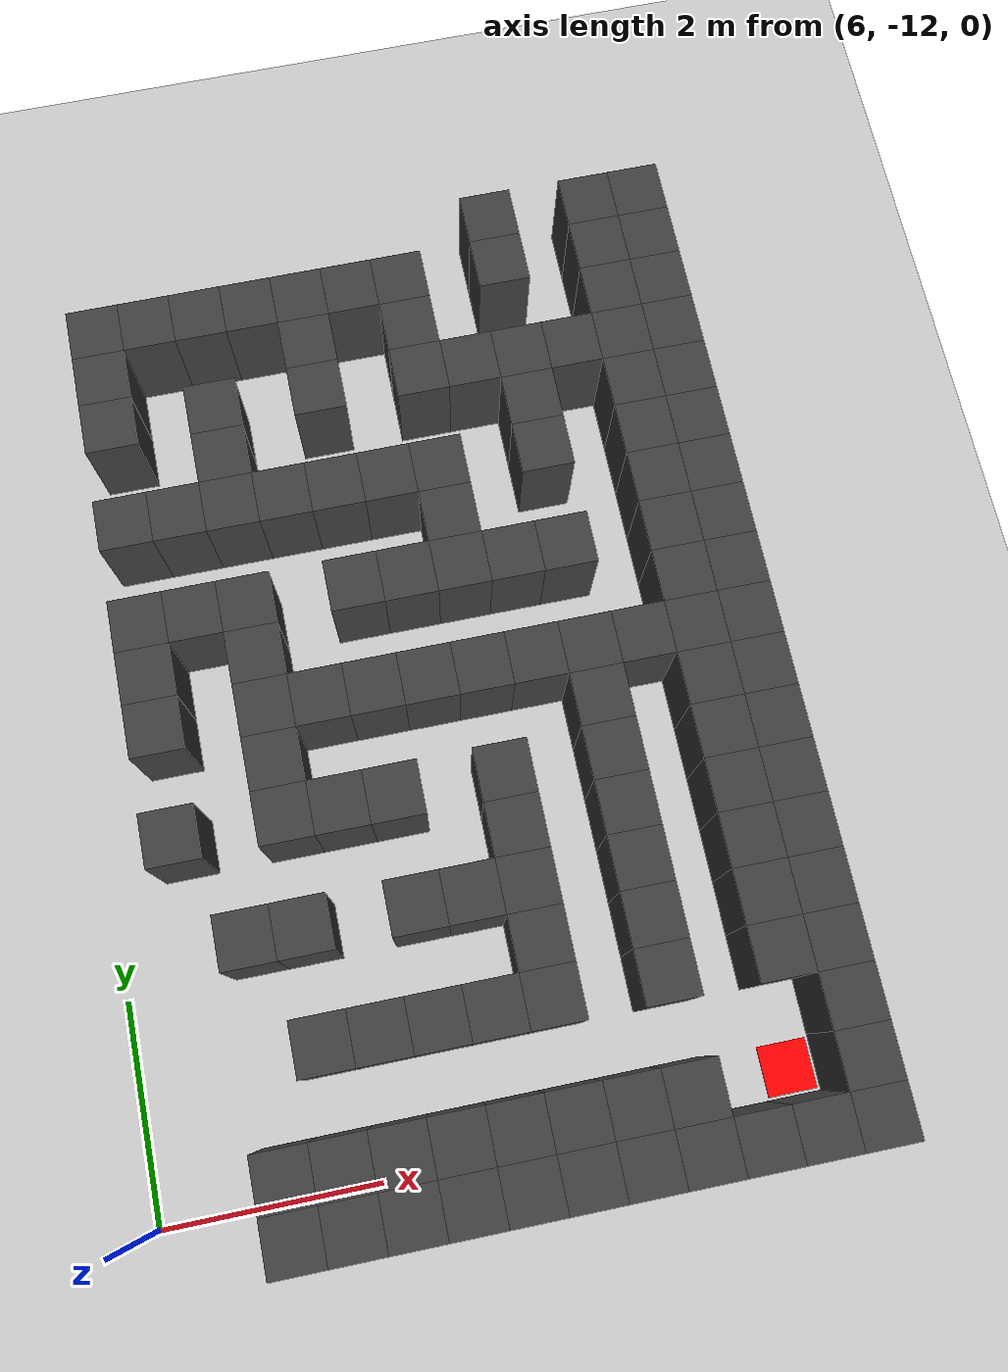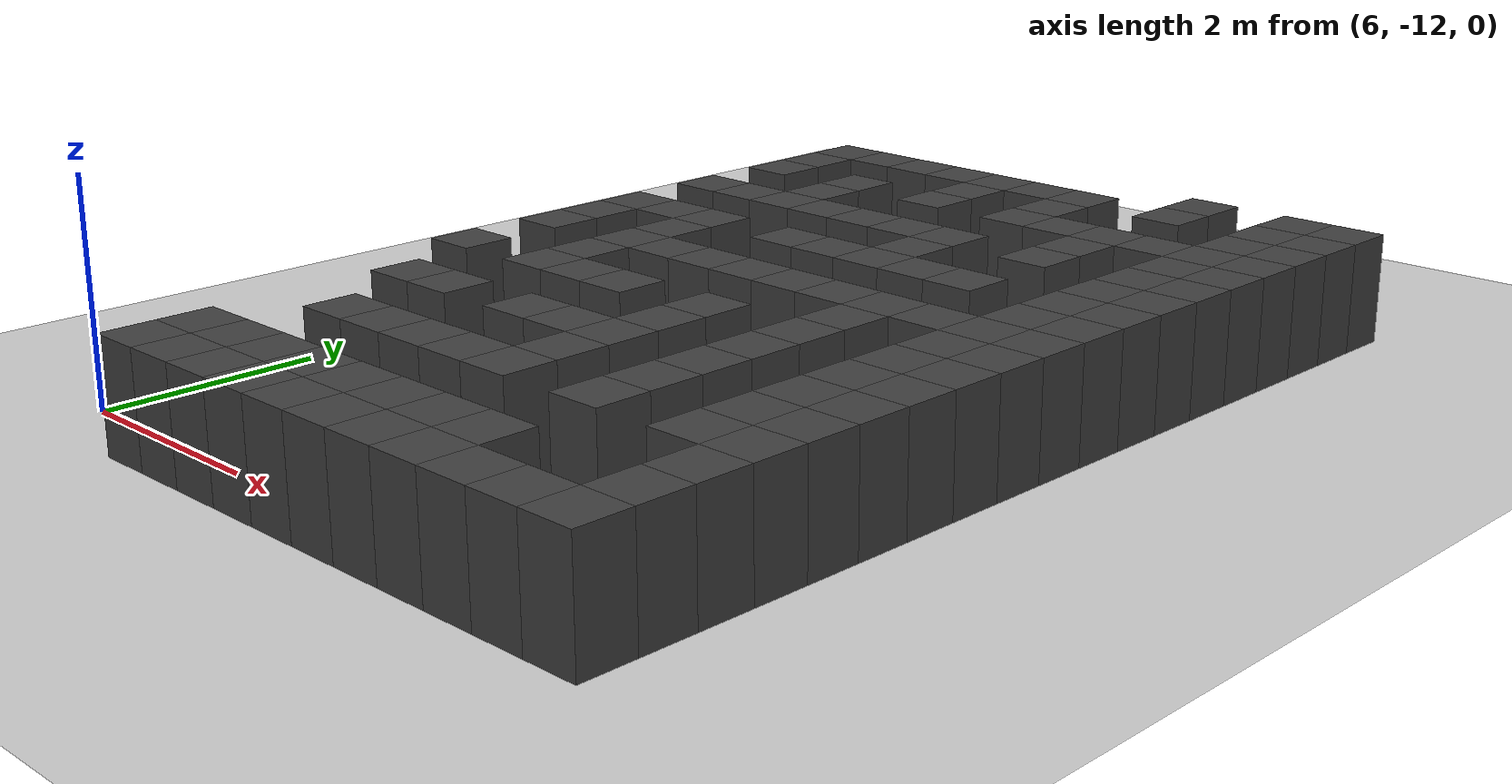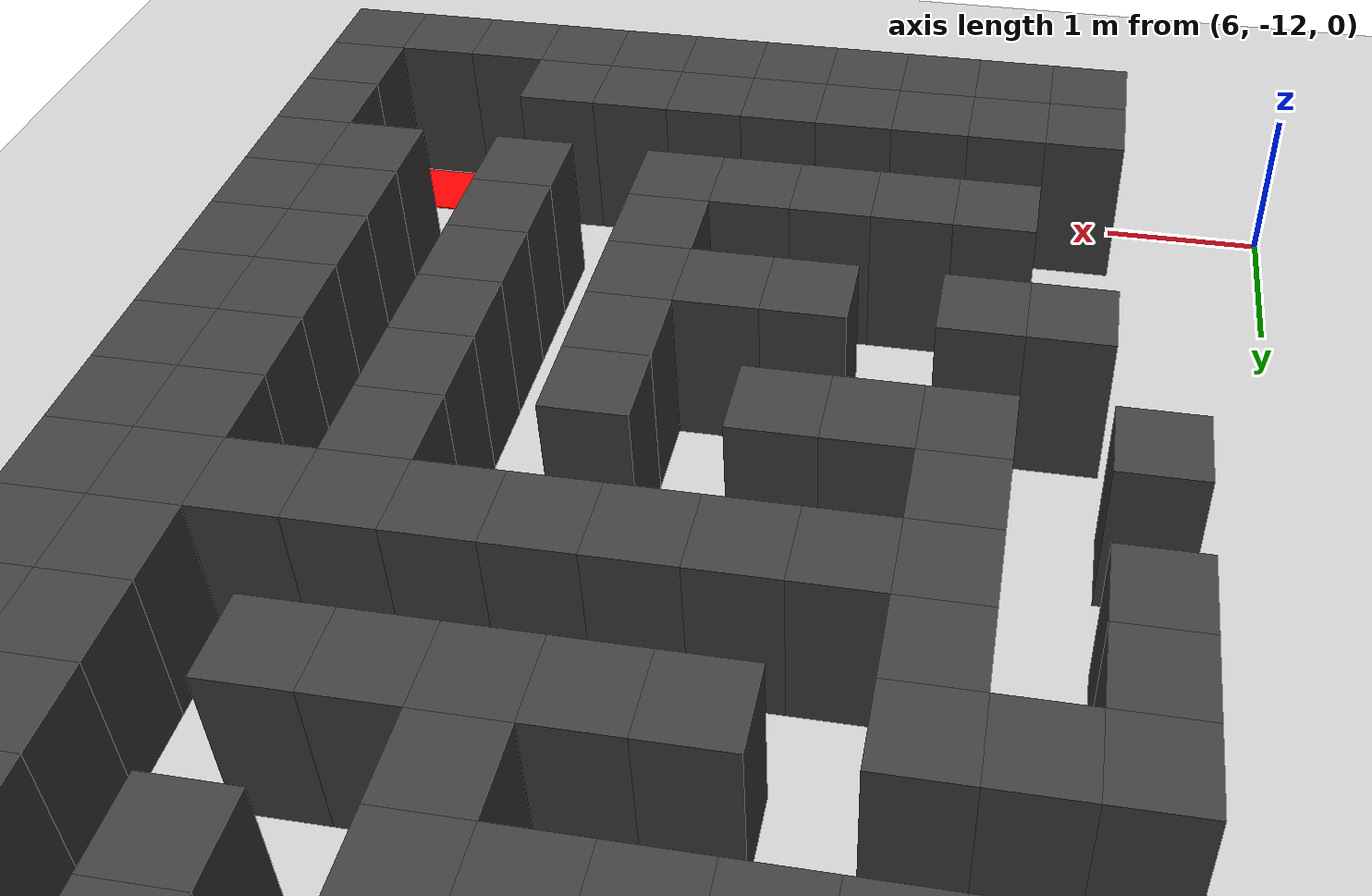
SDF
<sdf version="1.7">
 <world name="map_17663">
  <model name="ground_plane">
   <static>true</static>
   <link name="link">
    <collision name="collision">
     <geometry><plane><normal>0 0 1</normal><size>200 200</size></plane></geometry>
    </collision>
    <visual name="visual">
     <geometry><plane><normal>0 0 1</normal><size>200 200</size></plane></geometry>
     <material><ambient>0.8 0.8 0.8 1</ambient><diffuse>0.8 0.8 0.8 1</diffuse></material>
    </visual>
   </link>
  </model>
  <model name="maze_environment">
   <static>true</static>
   <link name="wall_786">
    <pose>10.750 -3.250 0.500 0 0 0</pose>
    <collision name="col"><geometry><box><size>0.5 0.5 1.0</size></box></geometry></collision>
    <visual name="vis">
     <geometry><box><size>0.5 0.5 1.0</size></box></geometry>
     <material><ambient>0.15 0.15 0.15 1</ambient><diffuse>0.25 0.25 0.25 1</diffuse></material>
    </visual>
   </link>
   <link name="wall_787">
    <pose>11.750 -3.250 0.500 0 0 0</pose>
    <collision name="col"><geometry><box><size>0.5 0.5 1.0</size></box></geometry></collision>
    <visual name="vis">
     <geometry><box><size>0.5 0.5 1.0</size></box></geometry>
     <material><ambient>0.15 0.15 0.15 1</ambient><diffuse>0.25 0.25 0.25 1</diffuse></material>
    </visual>
   </link>
   <link name="wall_788">
    <pose>12.250 -3.250 0.500 0 0 0</pose>
    <collision name="col"><geometry><box><size>0.5 0.5 1.0</size></box></geometry></collision>
    <visual name="vis">
     <geometry><box><size>0.5 0.5 1.0</size></box></geometry>
     <material><ambient>0.15 0.15 0.15 1</ambient><diffuse>0.25 0.25 0.25 1</diffuse></material>
    </visual>
   </link>
   <link name="wall_816">
    <pose>6.750 -3.750 0.500 0 0 0</pose>
    <collision name="col"><geometry><box><size>0.5 0.5 1.0</size></box></geometry></collision>
    <visual name="vis">
     <geometry><box><size>0.5 0.5 1.0</size></box></geometry>
     <material><ambient>0.15 0.15 0.15 1</ambient><diffuse>0.25 0.25 0.25 1</diffuse></material>
    </visual>
   </link>
   <link name="wall_817">
    <pose>7.250 -3.750 0.500 0 0 0</pose>
    <collision name="col"><geometry><box><size>0.5 0.5 1.0</size></box></geometry></collision>
    <visual name="vis">
     <geometry><box><size>0.5 0.5 1.0</size></box></geometry>
     <material><ambient>0.15 0.15 0.15 1</ambient><diffuse>0.25 0.25 0.25 1</diffuse></material>
    </visual>
   </link>
   <link name="wall_818">
    <pose>7.750 -3.750 0.500 0 0 0</pose>
    <collision name="col"><geometry><box><size>0.5 0.5 1.0</size></box></geometry></collision>
    <visual name="vis">
     <geometry><box><size>0.5 0.5 1.0</size></box></geometry>
     <material><ambient>0.15 0.15 0.15 1</ambient><diffuse>0.25 0.25 0.25 1</diffuse></material>
    </visual>
   </link>
   <link name="wall_819">
    <pose>8.250 -3.750 0.500 0 0 0</pose>
    <collision name="col"><geometry><box><size>0.5 0.5 1.0</size></box></geometry></collision>
    <visual name="vis">
     <geometry><box><size>0.5 0.5 1.0</size></box></geometry>
     <material><ambient>0.15 0.15 0.15 1</ambient><diffuse>0.25 0.25 0.25 1</diffuse></material>
    </visual>
   </link>
   <link name="wall_820">
    <pose>8.750 -3.750 0.500 0 0 0</pose>
    <collision name="col"><geometry><box><size>0.5 0.5 1.0</size></box></geometry></collision>
    <visual name="vis">
     <geometry><box><size>0.5 0.5 1.0</size></box></geometry>
     <material><ambient>0.15 0.15 0.15 1</ambient><diffuse>0.25 0.25 0.25 1</diffuse></material>
    </visual>
   </link>
   <link name="wall_821">
    <pose>9.250 -3.750 0.500 0 0 0</pose>
    <collision name="col"><geometry><box><size>0.5 0.5 1.0</size></box></geometry></collision>
    <visual name="vis">
     <geometry><box><size>0.5 0.5 1.0</size></box></geometry>
     <material><ambient>0.15 0.15 0.15 1</ambient><diffuse>0.25 0.25 0.25 1</diffuse></material>
    </visual>
   </link>
   <link name="wall_822">
    <pose>9.750 -3.750 0.500 0 0 0</pose>
    <collision name="col"><geometry><box><size>0.5 0.5 1.0</size></box></geometry></collision>
    <visual name="vis">
     <geometry><box><size>0.5 0.5 1.0</size></box></geometry>
     <material><ambient>0.15 0.15 0.15 1</ambient><diffuse>0.25 0.25 0.25 1</diffuse></material>
    </visual>
   </link>
   <link name="wall_823">
    <pose>10.750 -3.750 0.500 0 0 0</pose>
    <collision name="col"><geometry><box><size>0.5 0.5 1.0</size></box></geometry></collision>
    <visual name="vis">
     <geometry><box><size>0.5 0.5 1.0</size></box></geometry>
     <material><ambient>0.15 0.15 0.15 1</ambient><diffuse>0.25 0.25 0.25 1</diffuse></material>
    </visual>
   </link>
   <link name="wall_824">
    <pose>11.750 -3.750 0.500 0 0 0</pose>
    <collision name="col"><geometry><box><size>0.5 0.5 1.0</size></box></geometry></collision>
    <visual name="vis">
     <geometry><box><size>0.5 0.5 1.0</size></box></geometry>
     <material><ambient>0.15 0.15 0.15 1</ambient><diffuse>0.25 0.25 0.25 1</diffuse></material>
    </visual>
   </link>
   <link name="wall_825">
    <pose>12.250 -3.750 0.500 0 0 0</pose>
    <collision name="col"><geometry><box><size>0.5 0.5 1.0</size></box></geometry></collision>
    <visual name="vis">
     <geometry><box><size>0.5 0.5 1.0</size></box></geometry>
     <material><ambient>0.15 0.15 0.15 1</ambient><diffuse>0.25 0.25 0.25 1</diffuse></material>
    </visual>
   </link>
   <link name="wall_834">
    <pose>6.750 -4.250 0.500 0 0 0</pose>
    <collision name="col"><geometry><box><size>0.5 0.5 1.0</size></box></geometry></collision>
    <visual name="vis">
     <geometry><box><size>0.5 0.5 1.0</size></box></geometry>
     <material><ambient>0.15 0.15 0.15 1</ambient><diffuse>0.25 0.25 0.25 1</diffuse></material>
    </visual>
   </link>
   <link name="wall_835">
    <pose>8.750 -4.250 0.500 0 0 0</pose>
    <collision name="col"><geometry><box><size>0.5 0.5 1.0</size></box></geometry></collision>
    <visual name="vis">
     <geometry><box><size>0.5 0.5 1.0</size></box></geometry>
     <material><ambient>0.15 0.15 0.15 1</ambient><diffuse>0.25 0.25 0.25 1</diffuse></material>
    </visual>
   </link>
   <link name="wall_836">
    <pose>9.750 -4.250 0.500 0 0 0</pose>
    <collision name="col"><geometry><box><size>0.5 0.5 1.0</size></box></geometry></collision>
    <visual name="vis">
     <geometry><box><size>0.5 0.5 1.0</size></box></geometry>
     <material><ambient>0.15 0.15 0.15 1</ambient><diffuse>0.25 0.25 0.25 1</diffuse></material>
    </visual>
   </link>
   <link name="wall_837">
    <pose>11.750 -4.250 0.500 0 0 0</pose>
    <collision name="col"><geometry><box><size>0.5 0.5 1.0</size></box></geometry></collision>
    <visual name="vis">
     <geometry><box><size>0.5 0.5 1.0</size></box></geometry>
     <material><ambient>0.15 0.15 0.15 1</ambient><diffuse>0.25 0.25 0.25 1</diffuse></material>
    </visual>
   </link>
   <link name="wall_838">
    <pose>12.250 -4.250 0.500 0 0 0</pose>
    <collision name="col"><geometry><box><size>0.5 0.5 1.0</size></box></geometry></collision>
    <visual name="vis">
     <geometry><box><size>0.5 0.5 1.0</size></box></geometry>
     <material><ambient>0.15 0.15 0.15 1</ambient><diffuse>0.25 0.25 0.25 1</diffuse></material>
    </visual>
   </link>
   <link name="wall_864">
    <pose>6.750 -4.750 0.500 0 0 0</pose>
    <collision name="col"><geometry><box><size>0.5 0.5 1.0</size></box></geometry></collision>
    <visual name="vis">
     <geometry><box><size>0.5 0.5 1.0</size></box></geometry>
     <material><ambient>0.15 0.15 0.15 1</ambient><diffuse>0.25 0.25 0.25 1</diffuse></material>
    </visual>
   </link>
   <link name="wall_865">
    <pose>7.750 -4.750 0.500 0 0 0</pose>
    <collision name="col"><geometry><box><size>0.5 0.5 1.0</size></box></geometry></collision>
    <visual name="vis">
     <geometry><box><size>0.5 0.5 1.0</size></box></geometry>
     <material><ambient>0.15 0.15 0.15 1</ambient><diffuse>0.25 0.25 0.25 1</diffuse></material>
    </visual>
   </link>
   <link name="wall_866">
    <pose>8.750 -4.750 0.500 0 0 0</pose>
    <collision name="col"><geometry><box><size>0.5 0.5 1.0</size></box></geometry></collision>
    <visual name="vis">
     <geometry><box><size>0.5 0.5 1.0</size></box></geometry>
     <material><ambient>0.15 0.15 0.15 1</ambient><diffuse>0.25 0.25 0.25 1</diffuse></material>
    </visual>
   </link>
   <link name="wall_867">
    <pose>9.750 -4.750 0.500 0 0 0</pose>
    <collision name="col"><geometry><box><size>0.5 0.5 1.0</size></box></geometry></collision>
    <visual name="vis">
     <geometry><box><size>0.5 0.5 1.0</size></box></geometry>
     <material><ambient>0.15 0.15 0.15 1</ambient><diffuse>0.25 0.25 0.25 1</diffuse></material>
    </visual>
   </link>
   <link name="wall_868">
    <pose>10.250 -4.750 0.500 0 0 0</pose>
    <collision name="col"><geometry><box><size>0.5 0.5 1.0</size></box></geometry></collision>
    <visual name="vis">
     <geometry><box><size>0.5 0.5 1.0</size></box></geometry>
     <material><ambient>0.15 0.15 0.15 1</ambient><diffuse>0.25 0.25 0.25 1</diffuse></material>
    </visual>
   </link>
   <link name="wall_869">
    <pose>10.750 -4.750 0.500 0 0 0</pose>
    <collision name="col"><geometry><box><size>0.5 0.5 1.0</size></box></geometry></collision>
    <visual name="vis">
     <geometry><box><size>0.5 0.5 1.0</size></box></geometry>
     <material><ambient>0.15 0.15 0.15 1</ambient><diffuse>0.25 0.25 0.25 1</diffuse></material>
    </visual>
   </link>
   <link name="wall_870">
    <pose>11.250 -4.750 0.500 0 0 0</pose>
    <collision name="col"><geometry><box><size>0.5 0.5 1.0</size></box></geometry></collision>
    <visual name="vis">
     <geometry><box><size>0.5 0.5 1.0</size></box></geometry>
     <material><ambient>0.15 0.15 0.15 1</ambient><diffuse>0.25 0.25 0.25 1</diffuse></material>
    </visual>
   </link>
   <link name="wall_871">
    <pose>11.750 -4.750 0.500 0 0 0</pose>
    <collision name="col"><geometry><box><size>0.5 0.5 1.0</size></box></geometry></collision>
    <visual name="vis">
     <geometry><box><size>0.5 0.5 1.0</size></box></geometry>
     <material><ambient>0.15 0.15 0.15 1</ambient><diffuse>0.25 0.25 0.25 1</diffuse></material>
    </visual>
   </link>
   <link name="wall_872">
    <pose>12.250 -4.750 0.500 0 0 0</pose>
    <collision name="col"><geometry><box><size>0.5 0.5 1.0</size></box></geometry></collision>
    <visual name="vis">
     <geometry><box><size>0.5 0.5 1.0</size></box></geometry>
     <material><ambient>0.15 0.15 0.15 1</ambient><diffuse>0.25 0.25 0.25 1</diffuse></material>
    </visual>
   </link>
   <link name="wall_886">
    <pose>7.750 -5.250 0.500 0 0 0</pose>
    <collision name="col"><geometry><box><size>0.5 0.5 1.0</size></box></geometry></collision>
    <visual name="vis">
     <geometry><box><size>0.5 0.5 1.0</size></box></geometry>
     <material><ambient>0.15 0.15 0.15 1</ambient><diffuse>0.25 0.25 0.25 1</diffuse></material>
    </visual>
   </link>
   <link name="wall_887">
    <pose>10.750 -5.250 0.500 0 0 0</pose>
    <collision name="col"><geometry><box><size>0.5 0.5 1.0</size></box></geometry></collision>
    <visual name="vis">
     <geometry><box><size>0.5 0.5 1.0</size></box></geometry>
     <material><ambient>0.15 0.15 0.15 1</ambient><diffuse>0.25 0.25 0.25 1</diffuse></material>
    </visual>
   </link>
   <link name="wall_888">
    <pose>11.750 -5.250 0.500 0 0 0</pose>
    <collision name="col"><geometry><box><size>0.5 0.5 1.0</size></box></geometry></collision>
    <visual name="vis">
     <geometry><box><size>0.5 0.5 1.0</size></box></geometry>
     <material><ambient>0.15 0.15 0.15 1</ambient><diffuse>0.25 0.25 0.25 1</diffuse></material>
    </visual>
   </link>
   <link name="wall_889">
    <pose>12.250 -5.250 0.500 0 0 0</pose>
    <collision name="col"><geometry><box><size>0.5 0.5 1.0</size></box></geometry></collision>
    <visual name="vis">
     <geometry><box><size>0.5 0.5 1.0</size></box></geometry>
     <material><ambient>0.15 0.15 0.15 1</ambient><diffuse>0.25 0.25 0.25 1</diffuse></material>
    </visual>
   </link>
   <link name="wall_910">
    <pose>6.750 -5.750 0.500 0 0 0</pose>
    <collision name="col"><geometry><box><size>0.5 0.5 1.0</size></box></geometry></collision>
    <visual name="vis">
     <geometry><box><size>0.5 0.5 1.0</size></box></geometry>
     <material><ambient>0.15 0.15 0.15 1</ambient><diffuse>0.25 0.25 0.25 1</diffuse></material>
    </visual>
   </link>
   <link name="wall_911">
    <pose>7.250 -5.750 0.500 0 0 0</pose>
    <collision name="col"><geometry><box><size>0.5 0.5 1.0</size></box></geometry></collision>
    <visual name="vis">
     <geometry><box><size>0.5 0.5 1.0</size></box></geometry>
     <material><ambient>0.15 0.15 0.15 1</ambient><diffuse>0.25 0.25 0.25 1</diffuse></material>
    </visual>
   </link>
   <link name="wall_912">
    <pose>7.750 -5.750 0.500 0 0 0</pose>
    <collision name="col"><geometry><box><size>0.5 0.5 1.0</size></box></geometry></collision>
    <visual name="vis">
     <geometry><box><size>0.5 0.5 1.0</size></box></geometry>
     <material><ambient>0.15 0.15 0.15 1</ambient><diffuse>0.25 0.25 0.25 1</diffuse></material>
    </visual>
   </link>
   <link name="wall_913">
    <pose>8.250 -5.750 0.500 0 0 0</pose>
    <collision name="col"><geometry><box><size>0.5 0.5 1.0</size></box></geometry></collision>
    <visual name="vis">
     <geometry><box><size>0.5 0.5 1.0</size></box></geometry>
     <material><ambient>0.15 0.15 0.15 1</ambient><diffuse>0.25 0.25 0.25 1</diffuse></material>
    </visual>
   </link>
   <link name="wall_914">
    <pose>8.750 -5.750 0.500 0 0 0</pose>
    <collision name="col"><geometry><box><size>0.5 0.5 1.0</size></box></geometry></collision>
    <visual name="vis">
     <geometry><box><size>0.5 0.5 1.0</size></box></geometry>
     <material><ambient>0.15 0.15 0.15 1</ambient><diffuse>0.25 0.25 0.25 1</diffuse></material>
    </visual>
   </link>
   <link name="wall_915">
    <pose>9.250 -5.750 0.500 0 0 0</pose>
    <collision name="col"><geometry><box><size>0.5 0.5 1.0</size></box></geometry></collision>
    <visual name="vis">
     <geometry><box><size>0.5 0.5 1.0</size></box></geometry>
     <material><ambient>0.15 0.15 0.15 1</ambient><diffuse>0.25 0.25 0.25 1</diffuse></material>
    </visual>
   </link>
   <link name="wall_916">
    <pose>9.750 -5.750 0.500 0 0 0</pose>
    <collision name="col"><geometry><box><size>0.5 0.5 1.0</size></box></geometry></collision>
    <visual name="vis">
     <geometry><box><size>0.5 0.5 1.0</size></box></geometry>
     <material><ambient>0.15 0.15 0.15 1</ambient><diffuse>0.25 0.25 0.25 1</diffuse></material>
    </visual>
   </link>
   <link name="wall_917">
    <pose>10.750 -5.750 0.500 0 0 0</pose>
    <collision name="col"><geometry><box><size>0.5 0.5 1.0</size></box></geometry></collision>
    <visual name="vis">
     <geometry><box><size>0.5 0.5 1.0</size></box></geometry>
     <material><ambient>0.15 0.15 0.15 1</ambient><diffuse>0.25 0.25 0.25 1</diffuse></material>
    </visual>
   </link>
   <link name="wall_918">
    <pose>11.750 -5.750 0.500 0 0 0</pose>
    <collision name="col"><geometry><box><size>0.5 0.5 1.0</size></box></geometry></collision>
    <visual name="vis">
     <geometry><box><size>0.5 0.5 1.0</size></box></geometry>
     <material><ambient>0.15 0.15 0.15 1</ambient><diffuse>0.25 0.25 0.25 1</diffuse></material>
    </visual>
   </link>
   <link name="wall_919">
    <pose>12.250 -5.750 0.500 0 0 0</pose>
    <collision name="col"><geometry><box><size>0.5 0.5 1.0</size></box></geometry></collision>
    <visual name="vis">
     <geometry><box><size>0.5 0.5 1.0</size></box></geometry>
     <material><ambient>0.15 0.15 0.15 1</ambient><diffuse>0.25 0.25 0.25 1</diffuse></material>
    </visual>
   </link>
   <link name="wall_931">
    <pose>9.750 -6.250 0.500 0 0 0</pose>
    <collision name="col"><geometry><box><size>0.5 0.5 1.0</size></box></geometry></collision>
    <visual name="vis">
     <geometry><box><size>0.5 0.5 1.0</size></box></geometry>
     <material><ambient>0.15 0.15 0.15 1</ambient><diffuse>0.25 0.25 0.25 1</diffuse></material>
    </visual>
   </link>
   <link name="wall_932">
    <pose>11.750 -6.250 0.500 0 0 0</pose>
    <collision name="col"><geometry><box><size>0.5 0.5 1.0</size></box></geometry></collision>
    <visual name="vis">
     <geometry><box><size>0.5 0.5 1.0</size></box></geometry>
     <material><ambient>0.15 0.15 0.15 1</ambient><diffuse>0.25 0.25 0.25 1</diffuse></material>
    </visual>
   </link>
   <link name="wall_933">
    <pose>12.250 -6.250 0.500 0 0 0</pose>
    <collision name="col"><geometry><box><size>0.5 0.5 1.0</size></box></geometry></collision>
    <visual name="vis">
     <geometry><box><size>0.5 0.5 1.0</size></box></geometry>
     <material><ambient>0.15 0.15 0.15 1</ambient><diffuse>0.25 0.25 0.25 1</diffuse></material>
    </visual>
   </link>
   <link name="wall_964">
    <pose>6.750 -6.750 0.500 0 0 0</pose>
    <collision name="col"><geometry><box><size>0.5 0.5 1.0</size></box></geometry></collision>
    <visual name="vis">
     <geometry><box><size>0.5 0.5 1.0</size></box></geometry>
     <material><ambient>0.15 0.15 0.15 1</ambient><diffuse>0.25 0.25 0.25 1</diffuse></material>
    </visual>
   </link>
   <link name="wall_965">
    <pose>7.250 -6.750 0.500 0 0 0</pose>
    <collision name="col"><geometry><box><size>0.5 0.5 1.0</size></box></geometry></collision>
    <visual name="vis">
     <geometry><box><size>0.5 0.5 1.0</size></box></geometry>
     <material><ambient>0.15 0.15 0.15 1</ambient><diffuse>0.25 0.25 0.25 1</diffuse></material>
    </visual>
   </link>
   <link name="wall_966">
    <pose>7.750 -6.750 0.500 0 0 0</pose>
    <collision name="col"><geometry><box><size>0.5 0.5 1.0</size></box></geometry></collision>
    <visual name="vis">
     <geometry><box><size>0.5 0.5 1.0</size></box></geometry>
     <material><ambient>0.15 0.15 0.15 1</ambient><diffuse>0.25 0.25 0.25 1</diffuse></material>
    </visual>
   </link>
   <link name="wall_967">
    <pose>8.750 -6.750 0.500 0 0 0</pose>
    <collision name="col"><geometry><box><size>0.5 0.5 1.0</size></box></geometry></collision>
    <visual name="vis">
     <geometry><box><size>0.5 0.5 1.0</size></box></geometry>
     <material><ambient>0.15 0.15 0.15 1</ambient><diffuse>0.25 0.25 0.25 1</diffuse></material>
    </visual>
   </link>
   <link name="wall_968">
    <pose>9.250 -6.750 0.500 0 0 0</pose>
    <collision name="col"><geometry><box><size>0.5 0.5 1.0</size></box></geometry></collision>
    <visual name="vis">
     <geometry><box><size>0.5 0.5 1.0</size></box></geometry>
     <material><ambient>0.15 0.15 0.15 1</ambient><diffuse>0.25 0.25 0.25 1</diffuse></material>
    </visual>
   </link>
   <link name="wall_969">
    <pose>9.750 -6.750 0.500 0 0 0</pose>
    <collision name="col"><geometry><box><size>0.5 0.5 1.0</size></box></geometry></collision>
    <visual name="vis">
     <geometry><box><size>0.5 0.5 1.0</size></box></geometry>
     <material><ambient>0.15 0.15 0.15 1</ambient><diffuse>0.25 0.25 0.25 1</diffuse></material>
    </visual>
   </link>
   <link name="wall_970">
    <pose>10.250 -6.750 0.500 0 0 0</pose>
    <collision name="col"><geometry><box><size>0.5 0.5 1.0</size></box></geometry></collision>
    <visual name="vis">
     <geometry><box><size>0.5 0.5 1.0</size></box></geometry>
     <material><ambient>0.15 0.15 0.15 1</ambient><diffuse>0.25 0.25 0.25 1</diffuse></material>
    </visual>
   </link>
   <link name="wall_971">
    <pose>10.750 -6.750 0.500 0 0 0</pose>
    <collision name="col"><geometry><box><size>0.5 0.5 1.0</size></box></geometry></collision>
    <visual name="vis">
     <geometry><box><size>0.5 0.5 1.0</size></box></geometry>
     <material><ambient>0.15 0.15 0.15 1</ambient><diffuse>0.25 0.25 0.25 1</diffuse></material>
    </visual>
   </link>
   <link name="wall_972">
    <pose>11.750 -6.750 0.500 0 0 0</pose>
    <collision name="col"><geometry><box><size>0.5 0.5 1.0</size></box></geometry></collision>
    <visual name="vis">
     <geometry><box><size>0.5 0.5 1.0</size></box></geometry>
     <material><ambient>0.15 0.15 0.15 1</ambient><diffuse>0.25 0.25 0.25 1</diffuse></material>
    </visual>
   </link>
   <link name="wall_973">
    <pose>12.250 -6.750 0.500 0 0 0</pose>
    <collision name="col"><geometry><box><size>0.5 0.5 1.0</size></box></geometry></collision>
    <visual name="vis">
     <geometry><box><size>0.5 0.5 1.0</size></box></geometry>
     <material><ambient>0.15 0.15 0.15 1</ambient><diffuse>0.25 0.25 0.25 1</diffuse></material>
    </visual>
   </link>
   <link name="wall_983">
    <pose>6.750 -7.250 0.500 0 0 0</pose>
    <collision name="col"><geometry><box><size>0.5 0.5 1.0</size></box></geometry></collision>
    <visual name="vis">
     <geometry><box><size>0.5 0.5 1.0</size></box></geometry>
     <material><ambient>0.15 0.15 0.15 1</ambient><diffuse>0.25 0.25 0.25 1</diffuse></material>
    </visual>
   </link>
   <link name="wall_984">
    <pose>7.750 -7.250 0.500 0 0 0</pose>
    <collision name="col"><geometry><box><size>0.5 0.5 1.0</size></box></geometry></collision>
    <visual name="vis">
     <geometry><box><size>0.5 0.5 1.0</size></box></geometry>
     <material><ambient>0.15 0.15 0.15 1</ambient><diffuse>0.25 0.25 0.25 1</diffuse></material>
    </visual>
   </link>
   <link name="wall_985">
    <pose>11.750 -7.250 0.500 0 0 0</pose>
    <collision name="col"><geometry><box><size>0.5 0.5 1.0</size></box></geometry></collision>
    <visual name="vis">
     <geometry><box><size>0.5 0.5 1.0</size></box></geometry>
     <material><ambient>0.15 0.15 0.15 1</ambient><diffuse>0.25 0.25 0.25 1</diffuse></material>
    </visual>
   </link>
   <link name="wall_986">
    <pose>12.250 -7.250 0.500 0 0 0</pose>
    <collision name="col"><geometry><box><size>0.5 0.5 1.0</size></box></geometry></collision>
    <visual name="vis">
     <geometry><box><size>0.5 0.5 1.0</size></box></geometry>
     <material><ambient>0.15 0.15 0.15 1</ambient><diffuse>0.25 0.25 0.25 1</diffuse></material>
    </visual>
   </link>
   <link name="wall_1009">
    <pose>6.750 -7.750 0.500 0 0 0</pose>
    <collision name="col"><geometry><box><size>0.5 0.5 1.0</size></box></geometry></collision>
    <visual name="vis">
     <geometry><box><size>0.5 0.5 1.0</size></box></geometry>
     <material><ambient>0.15 0.15 0.15 1</ambient><diffuse>0.25 0.25 0.25 1</diffuse></material>
    </visual>
   </link>
   <link name="wall_1010">
    <pose>7.750 -7.750 0.500 0 0 0</pose>
    <collision name="col"><geometry><box><size>0.5 0.5 1.0</size></box></geometry></collision>
    <visual name="vis">
     <geometry><box><size>0.5 0.5 1.0</size></box></geometry>
     <material><ambient>0.15 0.15 0.15 1</ambient><diffuse>0.25 0.25 0.25 1</diffuse></material>
    </visual>
   </link>
   <link name="wall_1011">
    <pose>8.250 -7.750 0.500 0 0 0</pose>
    <collision name="col"><geometry><box><size>0.5 0.5 1.0</size></box></geometry></collision>
    <visual name="vis">
     <geometry><box><size>0.5 0.5 1.0</size></box></geometry>
     <material><ambient>0.15 0.15 0.15 1</ambient><diffuse>0.25 0.25 0.25 1</diffuse></material>
    </visual>
   </link>
   <link name="wall_1012">
    <pose>8.750 -7.750 0.500 0 0 0</pose>
    <collision name="col"><geometry><box><size>0.5 0.5 1.0</size></box></geometry></collision>
    <visual name="vis">
     <geometry><box><size>0.5 0.5 1.0</size></box></geometry>
     <material><ambient>0.15 0.15 0.15 1</ambient><diffuse>0.25 0.25 0.25 1</diffuse></material>
    </visual>
   </link>
   <link name="wall_1013">
    <pose>9.250 -7.750 0.500 0 0 0</pose>
    <collision name="col"><geometry><box><size>0.5 0.5 1.0</size></box></geometry></collision>
    <visual name="vis">
     <geometry><box><size>0.5 0.5 1.0</size></box></geometry>
     <material><ambient>0.15 0.15 0.15 1</ambient><diffuse>0.25 0.25 0.25 1</diffuse></material>
    </visual>
   </link>
   <link name="wall_1014">
    <pose>9.750 -7.750 0.500 0 0 0</pose>
    <collision name="col"><geometry><box><size>0.5 0.5 1.0</size></box></geometry></collision>
    <visual name="vis">
     <geometry><box><size>0.5 0.5 1.0</size></box></geometry>
     <material><ambient>0.15 0.15 0.15 1</ambient><diffuse>0.25 0.25 0.25 1</diffuse></material>
    </visual>
   </link>
   <link name="wall_1015">
    <pose>10.250 -7.750 0.500 0 0 0</pose>
    <collision name="col"><geometry><box><size>0.5 0.5 1.0</size></box></geometry></collision>
    <visual name="vis">
     <geometry><box><size>0.5 0.5 1.0</size></box></geometry>
     <material><ambient>0.15 0.15 0.15 1</ambient><diffuse>0.25 0.25 0.25 1</diffuse></material>
    </visual>
   </link>
   <link name="wall_1016">
    <pose>10.750 -7.750 0.500 0 0 0</pose>
    <collision name="col"><geometry><box><size>0.5 0.5 1.0</size></box></geometry></collision>
    <visual name="vis">
     <geometry><box><size>0.5 0.5 1.0</size></box></geometry>
     <material><ambient>0.15 0.15 0.15 1</ambient><diffuse>0.25 0.25 0.25 1</diffuse></material>
    </visual>
   </link>
   <link name="wall_1017">
    <pose>11.250 -7.750 0.500 0 0 0</pose>
    <collision name="col"><geometry><box><size>0.5 0.5 1.0</size></box></geometry></collision>
    <visual name="vis">
     <geometry><box><size>0.5 0.5 1.0</size></box></geometry>
     <material><ambient>0.15 0.15 0.15 1</ambient><diffuse>0.25 0.25 0.25 1</diffuse></material>
    </visual>
   </link>
   <link name="wall_1018">
    <pose>11.750 -7.750 0.500 0 0 0</pose>
    <collision name="col"><geometry><box><size>0.5 0.5 1.0</size></box></geometry></collision>
    <visual name="vis">
     <geometry><box><size>0.5 0.5 1.0</size></box></geometry>
     <material><ambient>0.15 0.15 0.15 1</ambient><diffuse>0.25 0.25 0.25 1</diffuse></material>
    </visual>
   </link>
   <link name="wall_1019">
    <pose>12.250 -7.750 0.500 0 0 0</pose>
    <collision name="col"><geometry><box><size>0.5 0.5 1.0</size></box></geometry></collision>
    <visual name="vis">
     <geometry><box><size>0.5 0.5 1.0</size></box></geometry>
     <material><ambient>0.15 0.15 0.15 1</ambient><diffuse>0.25 0.25 0.25 1</diffuse></material>
    </visual>
   </link>
   <link name="wall_1031">
    <pose>7.750 -8.250 0.500 0 0 0</pose>
    <collision name="col"><geometry><box><size>0.5 0.5 1.0</size></box></geometry></collision>
    <visual name="vis">
     <geometry><box><size>0.5 0.5 1.0</size></box></geometry>
     <material><ambient>0.15 0.15 0.15 1</ambient><diffuse>0.25 0.25 0.25 1</diffuse></material>
    </visual>
   </link>
   <link name="wall_1032">
    <pose>10.750 -8.250 0.500 0 0 0</pose>
    <collision name="col"><geometry><box><size>0.5 0.5 1.0</size></box></geometry></collision>
    <visual name="vis">
     <geometry><box><size>0.5 0.5 1.0</size></box></geometry>
     <material><ambient>0.15 0.15 0.15 1</ambient><diffuse>0.25 0.25 0.25 1</diffuse></material>
    </visual>
   </link>
   <link name="wall_1033">
    <pose>11.750 -8.250 0.500 0 0 0</pose>
    <collision name="col"><geometry><box><size>0.5 0.5 1.0</size></box></geometry></collision>
    <visual name="vis">
     <geometry><box><size>0.5 0.5 1.0</size></box></geometry>
     <material><ambient>0.15 0.15 0.15 1</ambient><diffuse>0.25 0.25 0.25 1</diffuse></material>
    </visual>
   </link>
   <link name="wall_1034">
    <pose>12.250 -8.250 0.500 0 0 0</pose>
    <collision name="col"><geometry><box><size>0.5 0.5 1.0</size></box></geometry></collision>
    <visual name="vis">
     <geometry><box><size>0.5 0.5 1.0</size></box></geometry>
     <material><ambient>0.15 0.15 0.15 1</ambient><diffuse>0.25 0.25 0.25 1</diffuse></material>
    </visual>
   </link>
   <link name="wall_1061">
    <pose>6.750 -8.750 0.500 0 0 0</pose>
    <collision name="col"><geometry><box><size>0.5 0.5 1.0</size></box></geometry></collision>
    <visual name="vis">
     <geometry><box><size>0.5 0.5 1.0</size></box></geometry>
     <material><ambient>0.15 0.15 0.15 1</ambient><diffuse>0.25 0.25 0.25 1</diffuse></material>
    </visual>
   </link>
   <link name="wall_1062">
    <pose>7.750 -8.750 0.500 0 0 0</pose>
    <collision name="col"><geometry><box><size>0.5 0.5 1.0</size></box></geometry></collision>
    <visual name="vis">
     <geometry><box><size>0.5 0.5 1.0</size></box></geometry>
     <material><ambient>0.15 0.15 0.15 1</ambient><diffuse>0.25 0.25 0.25 1</diffuse></material>
    </visual>
   </link>
   <link name="wall_1063">
    <pose>8.250 -8.750 0.500 0 0 0</pose>
    <collision name="col"><geometry><box><size>0.5 0.5 1.0</size></box></geometry></collision>
    <visual name="vis">
     <geometry><box><size>0.5 0.5 1.0</size></box></geometry>
     <material><ambient>0.15 0.15 0.15 1</ambient><diffuse>0.25 0.25 0.25 1</diffuse></material>
    </visual>
   </link>
   <link name="wall_1064">
    <pose>8.750 -8.750 0.500 0 0 0</pose>
    <collision name="col"><geometry><box><size>0.5 0.5 1.0</size></box></geometry></collision>
    <visual name="vis">
     <geometry><box><size>0.5 0.5 1.0</size></box></geometry>
     <material><ambient>0.15 0.15 0.15 1</ambient><diffuse>0.25 0.25 0.25 1</diffuse></material>
    </visual>
   </link>
   <link name="wall_1065">
    <pose>9.750 -8.750 0.500 0 0 0</pose>
    <collision name="col"><geometry><box><size>0.5 0.5 1.0</size></box></geometry></collision>
    <visual name="vis">
     <geometry><box><size>0.5 0.5 1.0</size></box></geometry>
     <material><ambient>0.15 0.15 0.15 1</ambient><diffuse>0.25 0.25 0.25 1</diffuse></material>
    </visual>
   </link>
   <link name="wall_1066">
    <pose>10.750 -8.750 0.500 0 0 0</pose>
    <collision name="col"><geometry><box><size>0.5 0.5 1.0</size></box></geometry></collision>
    <visual name="vis">
     <geometry><box><size>0.5 0.5 1.0</size></box></geometry>
     <material><ambient>0.15 0.15 0.15 1</ambient><diffuse>0.25 0.25 0.25 1</diffuse></material>
    </visual>
   </link>
   <link name="wall_1067">
    <pose>11.750 -8.750 0.500 0 0 0</pose>
    <collision name="col"><geometry><box><size>0.5 0.5 1.0</size></box></geometry></collision>
    <visual name="vis">
     <geometry><box><size>0.5 0.5 1.0</size></box></geometry>
     <material><ambient>0.15 0.15 0.15 1</ambient><diffuse>0.25 0.25 0.25 1</diffuse></material>
    </visual>
   </link>
   <link name="wall_1068">
    <pose>12.250 -8.750 0.500 0 0 0</pose>
    <collision name="col"><geometry><box><size>0.5 0.5 1.0</size></box></geometry></collision>
    <visual name="vis">
     <geometry><box><size>0.5 0.5 1.0</size></box></geometry>
     <material><ambient>0.15 0.15 0.15 1</ambient><diffuse>0.25 0.25 0.25 1</diffuse></material>
    </visual>
   </link>
   <link name="wall_1080">
    <pose>9.750 -9.250 0.500 0 0 0</pose>
    <collision name="col"><geometry><box><size>0.5 0.5 1.0</size></box></geometry></collision>
    <visual name="vis">
     <geometry><box><size>0.5 0.5 1.0</size></box></geometry>
     <material><ambient>0.15 0.15 0.15 1</ambient><diffuse>0.25 0.25 0.25 1</diffuse></material>
    </visual>
   </link>
   <link name="wall_1081">
    <pose>10.750 -9.250 0.500 0 0 0</pose>
    <collision name="col"><geometry><box><size>0.5 0.5 1.0</size></box></geometry></collision>
    <visual name="vis">
     <geometry><box><size>0.5 0.5 1.0</size></box></geometry>
     <material><ambient>0.15 0.15 0.15 1</ambient><diffuse>0.25 0.25 0.25 1</diffuse></material>
    </visual>
   </link>
   <link name="wall_1082">
    <pose>11.750 -9.250 0.500 0 0 0</pose>
    <collision name="col"><geometry><box><size>0.5 0.5 1.0</size></box></geometry></collision>
    <visual name="vis">
     <geometry><box><size>0.5 0.5 1.0</size></box></geometry>
     <material><ambient>0.15 0.15 0.15 1</ambient><diffuse>0.25 0.25 0.25 1</diffuse></material>
    </visual>
   </link>
   <link name="wall_1083">
    <pose>12.250 -9.250 0.500 0 0 0</pose>
    <collision name="col"><geometry><box><size>0.5 0.5 1.0</size></box></geometry></collision>
    <visual name="vis">
     <geometry><box><size>0.5 0.5 1.0</size></box></geometry>
     <material><ambient>0.15 0.15 0.15 1</ambient><diffuse>0.25 0.25 0.25 1</diffuse></material>
    </visual>
   </link>
   <link name="wall_1112">
    <pose>7.250 -9.750 0.500 0 0 0</pose>
    <collision name="col"><geometry><box><size>0.5 0.5 1.0</size></box></geometry></collision>
    <visual name="vis">
     <geometry><box><size>0.5 0.5 1.0</size></box></geometry>
     <material><ambient>0.15 0.15 0.15 1</ambient><diffuse>0.25 0.25 0.25 1</diffuse></material>
    </visual>
   </link>
   <link name="wall_1113">
    <pose>7.750 -9.750 0.500 0 0 0</pose>
    <collision name="col"><geometry><box><size>0.5 0.5 1.0</size></box></geometry></collision>
    <visual name="vis">
     <geometry><box><size>0.5 0.5 1.0</size></box></geometry>
     <material><ambient>0.15 0.15 0.15 1</ambient><diffuse>0.25 0.25 0.25 1</diffuse></material>
    </visual>
   </link>
   <link name="wall_1114">
    <pose>8.750 -9.750 0.500 0 0 0</pose>
    <collision name="col"><geometry><box><size>0.5 0.5 1.0</size></box></geometry></collision>
    <visual name="vis">
     <geometry><box><size>0.5 0.5 1.0</size></box></geometry>
     <material><ambient>0.15 0.15 0.15 1</ambient><diffuse>0.25 0.25 0.25 1</diffuse></material>
    </visual>
   </link>
   <link name="wall_1115">
    <pose>9.250 -9.750 0.500 0 0 0</pose>
    <collision name="col"><geometry><box><size>0.5 0.5 1.0</size></box></geometry></collision>
    <visual name="vis">
     <geometry><box><size>0.5 0.5 1.0</size></box></geometry>
     <material><ambient>0.15 0.15 0.15 1</ambient><diffuse>0.25 0.25 0.25 1</diffuse></material>
    </visual>
   </link>
   <link name="wall_1116">
    <pose>9.750 -9.750 0.500 0 0 0</pose>
    <collision name="col"><geometry><box><size>0.5 0.5 1.0</size></box></geometry></collision>
    <visual name="vis">
     <geometry><box><size>0.5 0.5 1.0</size></box></geometry>
     <material><ambient>0.15 0.15 0.15 1</ambient><diffuse>0.25 0.25 0.25 1</diffuse></material>
    </visual>
   </link>
   <link name="wall_1117">
    <pose>10.750 -9.750 0.500 0 0 0</pose>
    <collision name="col"><geometry><box><size>0.5 0.5 1.0</size></box></geometry></collision>
    <visual name="vis">
     <geometry><box><size>0.5 0.5 1.0</size></box></geometry>
     <material><ambient>0.15 0.15 0.15 1</ambient><diffuse>0.25 0.25 0.25 1</diffuse></material>
    </visual>
   </link>
   <link name="wall_1118">
    <pose>11.750 -9.750 0.500 0 0 0</pose>
    <collision name="col"><geometry><box><size>0.5 0.5 1.0</size></box></geometry></collision>
    <visual name="vis">
     <geometry><box><size>0.5 0.5 1.0</size></box></geometry>
     <material><ambient>0.15 0.15 0.15 1</ambient><diffuse>0.25 0.25 0.25 1</diffuse></material>
    </visual>
   </link>
   <link name="wall_1119">
    <pose>12.250 -9.750 0.500 0 0 0</pose>
    <collision name="col"><geometry><box><size>0.5 0.5 1.0</size></box></geometry></collision>
    <visual name="vis">
     <geometry><box><size>0.5 0.5 1.0</size></box></geometry>
     <material><ambient>0.15 0.15 0.15 1</ambient><diffuse>0.25 0.25 0.25 1</diffuse></material>
    </visual>
   </link>
   <link name="wall_1130">
    <pose>9.750 -10.250 0.500 0 0 0</pose>
    <collision name="col"><geometry><box><size>0.5 0.5 1.0</size></box></geometry></collision>
    <visual name="vis">
     <geometry><box><size>0.5 0.5 1.0</size></box></geometry>
     <material><ambient>0.15 0.15 0.15 1</ambient><diffuse>0.25 0.25 0.25 1</diffuse></material>
    </visual>
   </link>
   <link name="wall_1131">
    <pose>10.750 -10.250 0.500 0 0 0</pose>
    <collision name="col"><geometry><box><size>0.5 0.5 1.0</size></box></geometry></collision>
    <visual name="vis">
     <geometry><box><size>0.5 0.5 1.0</size></box></geometry>
     <material><ambient>0.15 0.15 0.15 1</ambient><diffuse>0.25 0.25 0.25 1</diffuse></material>
    </visual>
   </link>
   <link name="wall_1132">
    <pose>11.750 -10.250 0.500 0 0 0</pose>
    <collision name="col"><geometry><box><size>0.5 0.5 1.0</size></box></geometry></collision>
    <visual name="vis">
     <geometry><box><size>0.5 0.5 1.0</size></box></geometry>
     <material><ambient>0.15 0.15 0.15 1</ambient><diffuse>0.25 0.25 0.25 1</diffuse></material>
    </visual>
   </link>
   <link name="wall_1133">
    <pose>12.250 -10.250 0.500 0 0 0</pose>
    <collision name="col"><geometry><box><size>0.5 0.5 1.0</size></box></geometry></collision>
    <visual name="vis">
     <geometry><box><size>0.5 0.5 1.0</size></box></geometry>
     <material><ambient>0.15 0.15 0.15 1</ambient><diffuse>0.25 0.25 0.25 1</diffuse></material>
    </visual>
   </link>
   <link name="wall_1161">
    <pose>7.750 -10.750 0.500 0 0 0</pose>
    <collision name="col"><geometry><box><size>0.5 0.5 1.0</size></box></geometry></collision>
    <visual name="vis">
     <geometry><box><size>0.5 0.5 1.0</size></box></geometry>
     <material><ambient>0.15 0.15 0.15 1</ambient><diffuse>0.25 0.25 0.25 1</diffuse></material>
    </visual>
   </link>
   <link name="wall_1162">
    <pose>8.250 -10.750 0.500 0 0 0</pose>
    <collision name="col"><geometry><box><size>0.5 0.5 1.0</size></box></geometry></collision>
    <visual name="vis">
     <geometry><box><size>0.5 0.5 1.0</size></box></geometry>
     <material><ambient>0.15 0.15 0.15 1</ambient><diffuse>0.25 0.25 0.25 1</diffuse></material>
    </visual>
   </link>
   <link name="wall_1163">
    <pose>8.750 -10.750 0.500 0 0 0</pose>
    <collision name="col"><geometry><box><size>0.5 0.5 1.0</size></box></geometry></collision>
    <visual name="vis">
     <geometry><box><size>0.5 0.5 1.0</size></box></geometry>
     <material><ambient>0.15 0.15 0.15 1</ambient><diffuse>0.25 0.25 0.25 1</diffuse></material>
    </visual>
   </link>
   <link name="wall_1164">
    <pose>9.250 -10.750 0.500 0 0 0</pose>
    <collision name="col"><geometry><box><size>0.5 0.5 1.0</size></box></geometry></collision>
    <visual name="vis">
     <geometry><box><size>0.5 0.5 1.0</size></box></geometry>
     <material><ambient>0.15 0.15 0.15 1</ambient><diffuse>0.25 0.25 0.25 1</diffuse></material>
    </visual>
   </link>
   <link name="wall_1165">
    <pose>9.750 -10.750 0.500 0 0 0</pose>
    <collision name="col"><geometry><box><size>0.5 0.5 1.0</size></box></geometry></collision>
    <visual name="vis">
     <geometry><box><size>0.5 0.5 1.0</size></box></geometry>
     <material><ambient>0.15 0.15 0.15 1</ambient><diffuse>0.25 0.25 0.25 1</diffuse></material>
    </visual>
   </link>
   <link name="wall_1166">
    <pose>10.750 -10.750 0.500 0 0 0</pose>
    <collision name="col"><geometry><box><size>0.5 0.5 1.0</size></box></geometry></collision>
    <visual name="vis">
     <geometry><box><size>0.5 0.5 1.0</size></box></geometry>
     <material><ambient>0.15 0.15 0.15 1</ambient><diffuse>0.25 0.25 0.25 1</diffuse></material>
    </visual>
   </link>
   <link name="wall_1167">
    <pose>11.750 -10.750 0.500 0 0 0</pose>
    <collision name="col"><geometry><box><size>0.5 0.5 1.0</size></box></geometry></collision>
    <visual name="vis">
     <geometry><box><size>0.5 0.5 1.0</size></box></geometry>
     <material><ambient>0.15 0.15 0.15 1</ambient><diffuse>0.25 0.25 0.25 1</diffuse></material>
    </visual>
   </link>
   <link name="wall_1168">
    <pose>12.250 -10.750 0.500 0 0 0</pose>
    <collision name="col"><geometry><box><size>0.5 0.5 1.0</size></box></geometry></collision>
    <visual name="vis">
     <geometry><box><size>0.5 0.5 1.0</size></box></geometry>
     <material><ambient>0.15 0.15 0.15 1</ambient><diffuse>0.25 0.25 0.25 1</diffuse></material>
    </visual>
   </link>
   <link name="wall_1175">
    <pose>12.250 -11.250 0.500 0 0 0</pose>
    <collision name="col"><geometry><box><size>0.5 0.5 1.0</size></box></geometry></collision>
    <visual name="vis">
     <geometry><box><size>0.5 0.5 1.0</size></box></geometry>
     <material><ambient>0.15 0.15 0.15 1</ambient><diffuse>0.25 0.25 0.25 1</diffuse></material>
    </visual>
   </link>
   <link name="wall_1215">
    <pose>7.250 -11.750 0.500 0 0 0</pose>
    <collision name="col"><geometry><box><size>0.5 0.5 1.0</size></box></geometry></collision>
    <visual name="vis">
     <geometry><box><size>0.5 0.5 1.0</size></box></geometry>
     <material><ambient>0.15 0.15 0.15 1</ambient><diffuse>0.25 0.25 0.25 1</diffuse></material>
    </visual>
   </link>
   <link name="wall_1216">
    <pose>7.750 -11.750 0.500 0 0 0</pose>
    <collision name="col"><geometry><box><size>0.5 0.5 1.0</size></box></geometry></collision>
    <visual name="vis">
     <geometry><box><size>0.5 0.5 1.0</size></box></geometry>
     <material><ambient>0.15 0.15 0.15 1</ambient><diffuse>0.25 0.25 0.25 1</diffuse></material>
    </visual>
   </link>
   <link name="wall_1217">
    <pose>8.250 -11.750 0.500 0 0 0</pose>
    <collision name="col"><geometry><box><size>0.5 0.5 1.0</size></box></geometry></collision>
    <visual name="vis">
     <geometry><box><size>0.5 0.5 1.0</size></box></geometry>
     <material><ambient>0.15 0.15 0.15 1</ambient><diffuse>0.25 0.25 0.25 1</diffuse></material>
    </visual>
   </link>
   <link name="wall_1218">
    <pose>8.750 -11.750 0.500 0 0 0</pose>
    <collision name="col"><geometry><box><size>0.5 0.5 1.0</size></box></geometry></collision>
    <visual name="vis">
     <geometry><box><size>0.5 0.5 1.0</size></box></geometry>
     <material><ambient>0.15 0.15 0.15 1</ambient><diffuse>0.25 0.25 0.25 1</diffuse></material>
    </visual>
   </link>
   <link name="wall_1219">
    <pose>9.250 -11.750 0.500 0 0 0</pose>
    <collision name="col"><geometry><box><size>0.5 0.5 1.0</size></box></geometry></collision>
    <visual name="vis">
     <geometry><box><size>0.5 0.5 1.0</size></box></geometry>
     <material><ambient>0.15 0.15 0.15 1</ambient><diffuse>0.25 0.25 0.25 1</diffuse></material>
    </visual>
   </link>
   <link name="wall_1220">
    <pose>9.750 -11.750 0.500 0 0 0</pose>
    <collision name="col"><geometry><box><size>0.5 0.5 1.0</size></box></geometry></collision>
    <visual name="vis">
     <geometry><box><size>0.5 0.5 1.0</size></box></geometry>
     <material><ambient>0.15 0.15 0.15 1</ambient><diffuse>0.25 0.25 0.25 1</diffuse></material>
    </visual>
   </link>
   <link name="wall_1221">
    <pose>10.250 -11.750 0.500 0 0 0</pose>
    <collision name="col"><geometry><box><size>0.5 0.5 1.0</size></box></geometry></collision>
    <visual name="vis">
     <geometry><box><size>0.5 0.5 1.0</size></box></geometry>
     <material><ambient>0.15 0.15 0.15 1</ambient><diffuse>0.25 0.25 0.25 1</diffuse></material>
    </visual>
   </link>
   <link name="wall_1222">
    <pose>10.750 -11.750 0.500 0 0 0</pose>
    <collision name="col"><geometry><box><size>0.5 0.5 1.0</size></box></geometry></collision>
    <visual name="vis">
     <geometry><box><size>0.5 0.5 1.0</size></box></geometry>
     <material><ambient>0.15 0.15 0.15 1</ambient><diffuse>0.25 0.25 0.25 1</diffuse></material>
    </visual>
   </link>
   <link name="wall_1223">
    <pose>12.250 -11.750 0.500 0 0 0</pose>
    <collision name="col"><geometry><box><size>0.5 0.5 1.0</size></box></geometry></collision>
    <visual name="vis">
     <geometry><box><size>0.5 0.5 1.0</size></box></geometry>
     <material><ambient>0.15 0.15 0.15 1</ambient><diffuse>0.25 0.25 0.25 1</diffuse></material>
    </visual>
   </link>
   <link name="wall_1263">
    <pose>7.250 -12.250 0.500 0 0 0</pose>
    <collision name="col"><geometry><box><size>0.5 0.5 1.0</size></box></geometry></collision>
    <visual name="vis">
     <geometry><box><size>0.5 0.5 1.0</size></box></geometry>
     <material><ambient>0.15 0.15 0.15 1</ambient><diffuse>0.25 0.25 0.25 1</diffuse></material>
    </visual>
   </link>
   <link name="wall_1264">
    <pose>7.750 -12.250 0.500 0 0 0</pose>
    <collision name="col"><geometry><box><size>0.5 0.5 1.0</size></box></geometry></collision>
    <visual name="vis">
     <geometry><box><size>0.5 0.5 1.0</size></box></geometry>
     <material><ambient>0.15 0.15 0.15 1</ambient><diffuse>0.25 0.25 0.25 1</diffuse></material>
    </visual>
   </link>
   <link name="wall_1265">
    <pose>8.250 -12.250 0.500 0 0 0</pose>
    <collision name="col"><geometry><box><size>0.5 0.5 1.0</size></box></geometry></collision>
    <visual name="vis">
     <geometry><box><size>0.5 0.5 1.0</size></box></geometry>
     <material><ambient>0.15 0.15 0.15 1</ambient><diffuse>0.25 0.25 0.25 1</diffuse></material>
    </visual>
   </link>
   <link name="wall_1266">
    <pose>8.750 -12.250 0.500 0 0 0</pose>
    <collision name="col"><geometry><box><size>0.5 0.5 1.0</size></box></geometry></collision>
    <visual name="vis">
     <geometry><box><size>0.5 0.5 1.0</size></box></geometry>
     <material><ambient>0.15 0.15 0.15 1</ambient><diffuse>0.25 0.25 0.25 1</diffuse></material>
    </visual>
   </link>
   <link name="wall_1267">
    <pose>9.250 -12.250 0.500 0 0 0</pose>
    <collision name="col"><geometry><box><size>0.5 0.5 1.0</size></box></geometry></collision>
    <visual name="vis">
     <geometry><box><size>0.5 0.5 1.0</size></box></geometry>
     <material><ambient>0.15 0.15 0.15 1</ambient><diffuse>0.25 0.25 0.25 1</diffuse></material>
    </visual>
   </link>
   <link name="wall_1268">
    <pose>9.750 -12.250 0.500 0 0 0</pose>
    <collision name="col"><geometry><box><size>0.5 0.5 1.0</size></box></geometry></collision>
    <visual name="vis">
     <geometry><box><size>0.5 0.5 1.0</size></box></geometry>
     <material><ambient>0.15 0.15 0.15 1</ambient><diffuse>0.25 0.25 0.25 1</diffuse></material>
    </visual>
   </link>
   <link name="wall_1269">
    <pose>10.250 -12.250 0.500 0 0 0</pose>
    <collision name="col"><geometry><box><size>0.5 0.5 1.0</size></box></geometry></collision>
    <visual name="vis">
     <geometry><box><size>0.5 0.5 1.0</size></box></geometry>
     <material><ambient>0.15 0.15 0.15 1</ambient><diffuse>0.25 0.25 0.25 1</diffuse></material>
    </visual>
   </link>
   <link name="wall_1270">
    <pose>10.750 -12.250 0.500 0 0 0</pose>
    <collision name="col"><geometry><box><size>0.5 0.5 1.0</size></box></geometry></collision>
    <visual name="vis">
     <geometry><box><size>0.5 0.5 1.0</size></box></geometry>
     <material><ambient>0.15 0.15 0.15 1</ambient><diffuse>0.25 0.25 0.25 1</diffuse></material>
    </visual>
   </link>
   <link name="wall_1271">
    <pose>11.250 -12.250 0.500 0 0 0</pose>
    <collision name="col"><geometry><box><size>0.5 0.5 1.0</size></box></geometry></collision>
    <visual name="vis">
     <geometry><box><size>0.5 0.5 1.0</size></box></geometry>
     <material><ambient>0.15 0.15 0.15 1</ambient><diffuse>0.25 0.25 0.25 1</diffuse></material>
    </visual>
   </link>
   <link name="wall_1272">
    <pose>11.750 -12.250 0.500 0 0 0</pose>
    <collision name="col"><geometry><box><size>0.5 0.5 1.0</size></box></geometry></collision>
    <visual name="vis">
     <geometry><box><size>0.5 0.5 1.0</size></box></geometry>
     <material><ambient>0.15 0.15 0.15 1</ambient><diffuse>0.25 0.25 0.25 1</diffuse></material>
    </visual>
   </link>
   <link name="wall_1273">
    <pose>12.250 -12.250 0.500 0 0 0</pose>
    <collision name="col"><geometry><box><size>0.5 0.5 1.0</size></box></geometry></collision>
    <visual name="vis">
     <geometry><box><size>0.5 0.5 1.0</size></box></geometry>
     <material><ambient>0.15 0.15 0.15 1</ambient><diffuse>0.25 0.25 0.25 1</diffuse></material>
    </visual>
   </link>
   <link name="goal_zone">
    <pose>11.750 -11.750 0.005 0 0 0</pose>
    <visual name="vis">
     <geometry><box><size>0.45 0.45 0.01</size></box></geometry>
     <material>
      <ambient>1.0 0.0 0.0 1</ambient>
      <diffuse>1.0 0.0 0.0 1</diffuse>
      <emissive>0.60 0.00 0.00 1</emissive>
     </material>
    </visual>
   </link>
  </model>
 </world>
</sdf>
